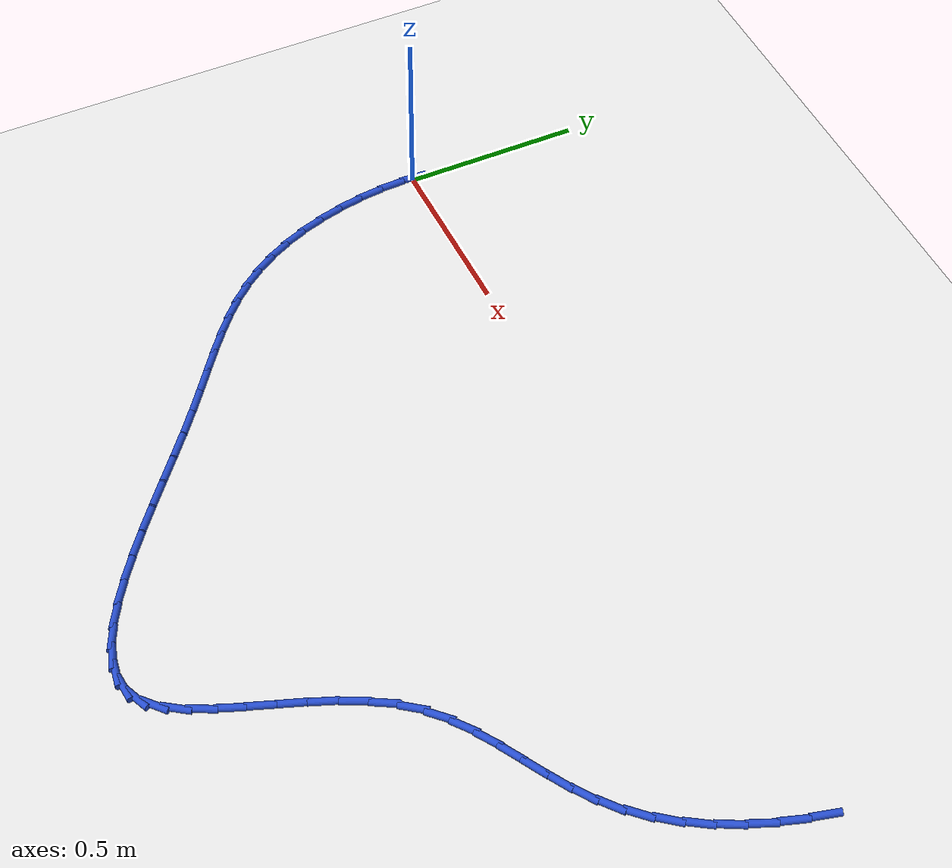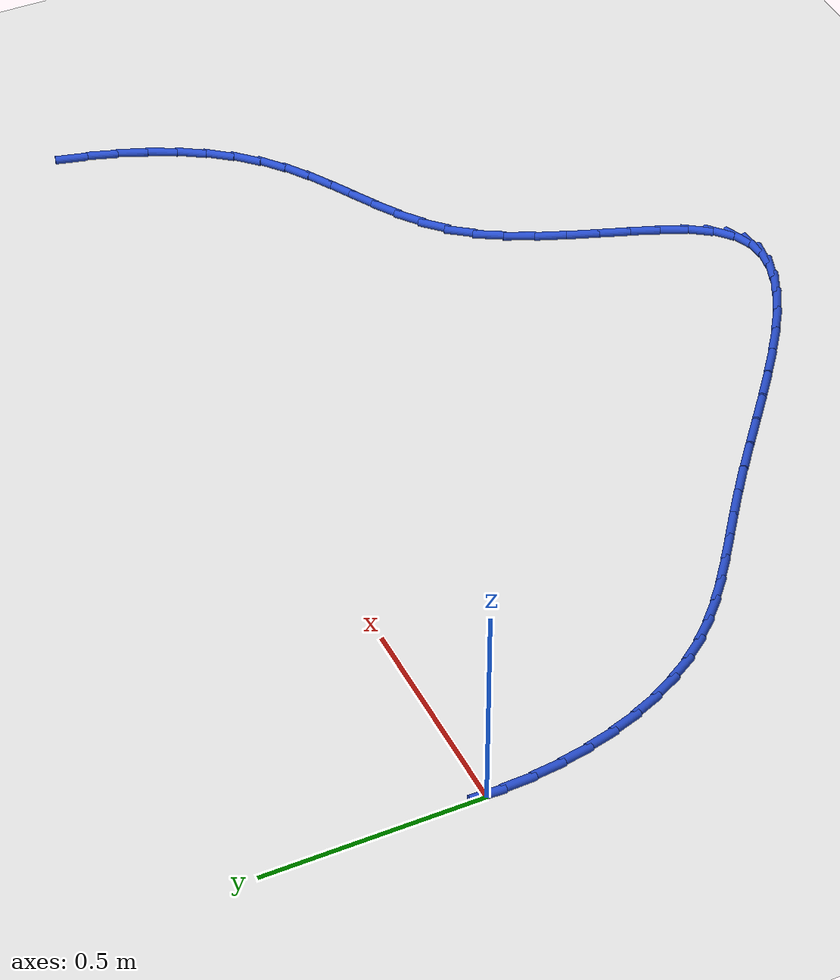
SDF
<sdf version="1.6">
 <world name="default">
  <model name="ground_plane">
   <static>1</static>
   <link name="link">
    <collision name="collision">
     <geometry><plane><normal>0 0 1</normal><size>100 100</size></plane></geometry>
     <surface><friction><ode><mu>100</mu><mu2>50</mu2></ode></friction></surface>
    </collision>
    <visual name="visual">
     <cast_shadows>0</cast_shadows>
     <geometry><plane><normal>0 0 1</normal><size>100 100</size></plane></geometry>
     <material>
      <script><uri>file://media/materials/scripts/gazebo.material</uri><name>Gazebo/WhiteGlow</name></script>
     </material>
    </visual>
   </link>
  </model>
  <model name="line">
   <link name="link_0">
    <pose>-9.367506770274758e-17 -2.7755575615628914e-17 0.01 0 1.57 1.5285880484415388</pose>
    <collision name="collision">
     <geometry><cylinder><radius>0.01</radius><length>0.08</length></cylinder></geometry>
    </collision>
    <visual name="visual">
     <material>
      <script><name>Gazebo/Blue</name><uri>file://media/materials/scripts/gazebo.material</uri></script>
     </material>
     <geometry><cylinder><radius>0.01</radius><length>0.08</length></cylinder></geometry>
    </visual>
   </link>
   <link name="link_55">
    <pose>2.358437446210766 -0.014191606656283134 0.01 0 1.57 1.32390162650616</pose>
    <collision name="collision">
     <geometry><cylinder><radius>0.01</radius><length>0.08</length></cylinder></geometry>
    </collision>
    <visual name="visual">
     <material>
      <script><name>Gazebo/Blue</name><uri>file://media/materials/scripts/gazebo.material</uri></script>
     </material>
     <geometry><cylinder><radius>0.01</radius><length>0.08</length></cylinder></geometry>
    </visual>
   </link>
   <link name="link_56">
    <pose>2.3399127585099904 -0.08769154825853483 0.01 0 1.57 1.2502908710156946</pose>
    <collision name="collision">
     <geometry><cylinder><radius>0.01</radius><length>0.08</length></cylinder></geometry>
    </collision>
    <visual name="visual">
     <material>
      <script><name>Gazebo/Blue</name><uri>file://media/materials/scripts/gazebo.material</uri></script>
     </material>
     <geometry><cylinder><radius>0.01</radius><length>0.08</length></cylinder></geometry>
    </visual>
   </link>
   <link name="link_57">
    <pose>2.3162986900490408 -0.15882887459790287 0.01 0 1.57 1.1723383392986488</pose>
    <collision name="collision">
     <geometry><cylinder><radius>0.01</radius><length>0.08</length></cylinder></geometry>
    </collision>
    <visual name="visual">
     <material>
      <script><name>Gazebo/Blue</name><uri>file://media/materials/scripts/gazebo.material</uri></script>
     </material>
     <geometry><cylinder><radius>0.01</radius><length>0.08</length></cylinder></geometry>
    </visual>
   </link>
   <link name="link_58">
    <pose>2.287644174581855 -0.22689561606193065 0.01 0 1.57 1.088633844616106</pose>
    <collision name="collision">
     <geometry><cylinder><radius>0.01</radius><length>0.08</length></cylinder></geometry>
    </collision>
    <visual name="visual">
     <material>
      <script><name>Gazebo/Blue</name><uri>file://media/materials/scripts/gazebo.material</uri></script>
     </material>
     <geometry><cylinder><radius>0.01</radius><length>0.08</length></cylinder></geometry>
    </visual>
   </link>
   <link name="link_59">
    <pose>2.253998145862369 -0.29118380303816455 0.01 0 1.57 0.997748832861094</pose>
    <collision name="collision">
     <geometry><cylinder><radius>0.01</radius><length>0.08</length></cylinder></geometry>
    </collision>
    <visual name="visual">
     <material>
      <script><name>Gazebo/Blue</name><uri>file://media/materials/scripts/gazebo.material</uri></script>
     </material>
     <geometry><cylinder><radius>0.01</radius><length>0.08</length></cylinder></geometry>
    </visual>
   </link>
   <link name="link_60">
    <pose>2.2154095376445215 -0.35098546591414836 0.01 0 1.57 0.8983316375205985</pose>
    <collision name="collision">
     <geometry><cylinder><radius>0.01</radius><length>0.08</length></cylinder></geometry>
    </collision>
    <visual name="visual">
     <material>
      <script><name>Gazebo/Blue</name><uri>file://media/materials/scripts/gazebo.material</uri></script>
     </material>
     <geometry><cylinder><radius>0.01</radius><length>0.08</length></cylinder></geometry>
    </visual>
   </link>
   <link name="link_61">
    <pose>2.171927283682248 -0.4055926350774283 0.01 0 1.57 0.7892910982523933</pose>
    <collision name="collision">
     <geometry><cylinder><radius>0.01</radius><length>0.08</length></cylinder></geometry>
    </collision>
    <visual name="visual">
     <material>
      <script><name>Gazebo/Blue</name><uri>file://media/materials/scripts/gazebo.material</uri></script>
     </material>
     <geometry><cylinder><radius>0.01</radius><length>0.08</length></cylinder></geometry>
    </visual>
   </link>
   <link name="link_62">
    <pose>2.1236003177294873 -0.45429734091554796 0.01 0 1.57 0.673548225584676</pose>
    <collision name="collision">
     <geometry><cylinder><radius>0.01</radius><length>0.08</length></cylinder></geometry>
    </collision>
    <visual name="visual">
     <material>
      <script><name>Gazebo/Blue</name><uri>file://media/materials/scripts/gazebo.material</uri></script>
     </material>
     <geometry><cylinder><radius>0.01</radius><length>0.08</length></cylinder></geometry>
    </visual>
   </link>
   <link name="link_63">
    <pose>2.0705877566310633 -0.496603793093915 0.01 0 1.57 0.5796017800958054</pose>
    <collision name="collision">
     <geometry><cylinder><radius>0.01</radius><length>0.08</length></cylinder></geometry>
    </collision>
    <visual name="visual">
     <material>
      <script><name>Gazebo/Blue</name><uri>file://media/materials/scripts/gazebo.material</uri></script>
     </material>
     <geometry><cylinder><radius>0.01</radius><length>0.08</length></cylinder></geometry>
    </visual>
   </link>
   <link name="link_64">
    <pose>2.0139217234049434 -0.5336973468864992 0.01 0 1.57 0.5220228827580072</pose>
    <collision name="collision">
     <geometry><cylinder><radius>0.01</radius><length>0.08</length></cylinder></geometry>
    </collision>
    <visual name="visual">
     <material>
      <script><name>Gazebo/Blue</name><uri>file://media/materials/scripts/gazebo.material</uri></script>
     </material>
     <geometry><cylinder><radius>0.01</radius><length>0.08</length></cylinder></geometry>
    </visual>
   </link>
   <link name="link_65">
    <pose>1.9550498292825882 -0.5675634620877389 0.01 0 1.57 0.5007012622687111</pose>
    <collision name="collision">
     <geometry><cylinder><radius>0.01</radius><length>0.08</length></cylinder></geometry>
    </collision>
    <visual name="visual">
     <material>
      <script><name>Gazebo/Blue</name><uri>file://media/materials/scripts/gazebo.material</uri></script>
     </material>
     <geometry><cylinder><radius>0.01</radius><length>0.08</length></cylinder></geometry>
    </visual>
   </link>
   <link name="link_66">
    <pose>1.8954222236985903 -0.6001924863029326 0.01 0 1.57 0.5153796966476312</pose>
    <collision name="collision">
     <geometry><cylinder><radius>0.01</radius><length>0.08</length></cylinder></geometry>
    </collision>
    <visual name="visual">
     <material>
      <script><name>Gazebo/Blue</name><uri>file://media/materials/scripts/gazebo.material</uri></script>
     </material>
     <geometry><cylinder><radius>0.01</radius><length>0.08</length></cylinder></geometry>
    </visual>
   </link>
   <link name="link_67">
    <pose>1.8364890560875462 -0.6335747671373783 0.01 0 1.57 0.5665750098836797</pose>
    <collision name="collision">
     <geometry><cylinder><radius>0.01</radius><length>0.08</length></cylinder></geometry>
    </collision>
    <visual name="visual">
     <material>
      <script><name>Gazebo/Blue</name><uri>file://media/materials/scripts/gazebo.material</uri></script>
     </material>
     <geometry><cylinder><radius>0.01</radius><length>0.08</length></cylinder></geometry>
    </visual>
   </link>
   <link name="link_68">
    <pose>1.7797004758840493 -0.6697006521963745 0.01 0 1.57 0.6550042879419673</pose>
    <collision name="collision">
     <geometry><cylinder><radius>0.01</radius><length>0.08</length></cylinder></geometry>
    </collision>
    <visual name="visual">
     <material>
      <script><name>Gazebo/Blue</name><uri>file://media/materials/scripts/gazebo.material</uri></script>
     </material>
     <geometry><cylinder><radius>0.01</radius><length>0.08</length></cylinder></geometry>
    </visual>
   </link>
   <link name="link_69">
    <pose>1.726506632522697 -0.7105604890852192 0.01 0 1.57 0.7794982787603721</pose>
    <collision name="collision">
     <geometry><cylinder><radius>0.01</radius><length>0.08</length></cylinder></geometry>
    </collision>
    <visual name="visual">
     <material>
      <script><name>Gazebo/Blue</name><uri>file://media/materials/scripts/gazebo.material</uri></script>
     </material>
     <geometry><cylinder><radius>0.01</radius><length>0.08</length></cylinder></geometry>
    </visual>
   </link>
   <link name="link_70">
    <pose>1.6783576754380811 -0.7581446254092113 0.01 0 1.57 0.93036537792649</pose>
    <collision name="collision">
     <geometry><cylinder><radius>0.01</radius><length>0.08</length></cylinder></geometry>
    </collision>
    <visual name="visual">
     <material>
      <script><name>Gazebo/Blue</name><uri>file://media/materials/scripts/gazebo.material</uri></script>
     </material>
     <geometry><cylinder><radius>0.01</radius><length>0.08</length></cylinder></geometry>
    </visual>
   </link>
   <link name="link_71">
    <pose>1.6365682365390335 -0.8142217329104393 0.01 0 1.57 1.0598239026738672</pose>
    <collision name="collision">
     <geometry><cylinder><radius>0.01</radius><length>0.08</length></cylinder></geometry>
    </collision>
    <visual name="visual">
     <material>
      <script><name>Gazebo/Blue</name><uri>file://media/materials/scripts/gazebo.material</uri></script>
     </material>
     <geometry><cylinder><radius>0.01</radius><length>0.08</length></cylinder></geometry>
    </visual>
   </link>
   <link name="link_72">
    <pose>1.6008481009221942 -0.8779353187967383 0.01 0 1.57 1.1474461197450034</pose>
    <collision name="collision">
     <geometry><cylinder><radius>0.01</radius><length>0.08</length></cylinder></geometry>
    </collision>
    <visual name="visual">
     <material>
      <script><name>Gazebo/Blue</name><uri>file://media/materials/scripts/gazebo.material</uri></script>
     </material>
     <geometry><cylinder><radius>0.01</radius><length>0.08</length></cylinder></geometry>
    </visual>
   </link>
   <link name="link_73">
    <pose>1.5698575081754536 -0.9467120724303129 0.01 0 1.57 1.2009334118441248</pose>
    <collision name="collision">
     <geometry><cylinder><radius>0.01</radius><length>0.08</length></cylinder></geometry>
    </collision>
    <visual name="visual">
     <material>
      <script><name>Gazebo/Blue</name><uri>file://media/materials/scripts/gazebo.material</uri></script>
     </material>
     <geometry><cylinder><radius>0.01</radius><length>0.08</length></cylinder></geometry>
    </visual>
   </link>
   <link name="link_74">
    <pose>1.542238558120381 -1.0179490106396194 0.01 0 1.57 1.225099829801175</pose>
    <collision name="collision">
     <geometry><cylinder><radius>0.01</radius><length>0.08</length></cylinder></geometry>
    </collision>
    <visual name="visual">
     <material>
      <script><name>Gazebo/Blue</name><uri>file://media/materials/scripts/gazebo.material</uri></script>
     </material>
     <geometry><cylinder><radius>0.01</radius><length>0.08</length></cylinder></geometry>
    </visual>
   </link>
   <link name="link_75">
    <pose>1.5166333505785485 -1.0890431502531115 0.01 0 1.57 1.2207928794216651</pose>
    <collision name="collision">
     <geometry><cylinder><radius>0.01</radius><length>0.08</length></cylinder></geometry>
    </collision>
    <visual name="visual">
     <material>
      <script><name>Gazebo/Blue</name><uri>file://media/materials/scripts/gazebo.material</uri></script>
     </material>
     <geometry><cylinder><radius>0.01</radius><length>0.08</length></cylinder></geometry>
    </visual>
   </link>
   <link name="link_76">
    <pose>1.4916839853715254 -1.1573915080992458 0.01 0 1.57 1.1841258878624872</pose>
    <collision name="collision">
     <geometry><cylinder><radius>0.01</radius><length>0.08</length></cylinder></geometry>
    </collision>
    <visual name="visual">
     <material>
      <script><name>Gazebo/Blue</name><uri>file://media/materials/scripts/gazebo.material</uri></script>
     </material>
     <geometry><cylinder><radius>0.01</radius><length>0.08</length></cylinder></geometry>
    </visual>
   </link>
   <link name="link_77">
    <pose>1.4660325623208839 -1.2203911010064767 0.01 0 1.57 1.1044281286270115</pose>
    <collision name="collision">
     <geometry><cylinder><radius>0.01</radius><length>0.08</length></cylinder></geometry>
    </collision>
    <visual name="visual">
     <material>
      <script><name>Gazebo/Blue</name><uri>file://media/materials/scripts/gazebo.material</uri></script>
     </material>
     <geometry><cylinder><radius>0.01</radius><length>0.08</length></cylinder></geometry>
    </visual>
   </link>
   <link name="link_78">
    <pose>1.4383211812481929 -1.27543894580326 0.01 0 1.57 0.9603108471024233</pose>
    <collision name="collision">
     <geometry><cylinder><radius>0.01</radius><length>0.08</length></cylinder></geometry>
    </collision>
    <visual name="visual">
     <material>
      <script><name>Gazebo/Blue</name><uri>file://media/materials/scripts/gazebo.material</uri></script>
     </material>
     <geometry><cylinder><radius>0.01</radius><length>0.08</length></cylinder></geometry>
    </visual>
   </link>
   <link name="link_79">
    <pose>1.4071919419750243 -1.3199320593180495 0.01 0 1.57 0.7176602700678565</pose>
    <collision name="collision">
     <geometry><cylinder><radius>0.01</radius><length>0.08</length></cylinder></geometry>
    </collision>
    <visual name="visual">
     <material>
      <script><name>Gazebo/Blue</name><uri>file://media/materials/scripts/gazebo.material</uri></script>
     </material>
     <geometry><cylinder><radius>0.01</radius><length>0.08</length></cylinder></geometry>
    </visual>
   </link>
   <link name="link_80">
    <pose>1.3712894625672358 -1.351272655056429 0.01 0 1.57 0.3832506354725179</pose>
    <collision name="collision">
     <geometry><cylinder><radius>0.01</radius><length>0.08</length></cylinder></geometry>
    </collision>
    <visual name="visual">
     <material>
      <script><name>Gazebo/Blue</name><uri>file://media/materials/scripts/gazebo.material</uri></script>
     </material>
     <geometry><cylinder><radius>0.01</radius><length>0.08</length></cylinder></geometry>
    </visual>
   </link>
   <link name="link_81">
    <pose>1.329808100363766 -1.3679973946472626 0.01 0 1.57 0.06836478159391231</pose>
    <collision name="collision">
     <geometry><cylinder><radius>0.01</radius><length>0.08</length></cylinder></geometry>
    </collision>
    <visual name="visual">
     <material>
      <script><name>Gazebo/Blue</name><uri>file://media/materials/scripts/gazebo.material</uri></script>
     </material>
     <geometry><cylinder><radius>0.01</radius><length>0.08</length></cylinder></geometry>
    </visual>
   </link>
   <link name="link_82">
    <pose>1.2831766411194183 -1.3711903200291096 0.01 0 1.57 -0.17230417804516793</pose>
    <collision name="collision">
     <geometry><cylinder><radius>0.01</radius><length>0.08</length></cylinder></geometry>
    </collision>
    <visual name="visual">
     <material>
      <script><name>Gazebo/Blue</name><uri>file://media/materials/scripts/gazebo.material</uri></script>
     </material>
     <geometry><cylinder><radius>0.01</radius><length>0.08</length></cylinder></geometry>
    </visual>
   </link>
   <link name="link_83">
    <pose>1.2319921261373064 -1.3622826871751825 0.01 0 1.57 -0.34115517033420995</pose>
    <collision name="collision">
     <geometry><cylinder><radius>0.01</radius><length>0.08</length></cylinder></geometry>
    </collision>
    <visual name="visual">
     <material>
      <script><name>Gazebo/Blue</name><uri>file://media/materials/scripts/gazebo.material</uri></script>
     </material>
     <geometry><cylinder><radius>0.01</radius><length>0.08</length></cylinder></geometry>
    </visual>
   </link>
   <link name="link_84">
    <pose>1.1768515967205462 -1.3427057520586931 0.01 0 1.57 -0.4576843303723018</pose>
    <collision name="collision">
     <geometry><cylinder><radius>0.01</radius><length>0.08</length></cylinder></geometry>
    </collision>
    <visual name="visual">
     <material>
      <script><name>Gazebo/Blue</name><uri>file://media/materials/scripts/gazebo.material</uri></script>
     </material>
     <geometry><cylinder><radius>0.01</radius><length>0.08</length></cylinder></geometry>
    </visual>
   </link>
   <link name="link_85">
    <pose>1.118352094172252 -1.3138907706528542 0.01 0 1.57 -0.5387965099283276</pose>
    <collision name="collision">
     <geometry><cylinder><radius>0.01</radius><length>0.08</length></cylinder></geometry>
    </collision>
    <visual name="visual">
     <material>
      <script><name>Gazebo/Blue</name><uri>file://media/materials/scripts/gazebo.material</uri></script>
     </material>
     <geometry><cylinder><radius>0.01</radius><length>0.08</length></cylinder></geometry>
    </visual>
   </link>
   <link name="link_86">
    <pose>1.0570906597955385 -1.2772689989308774 0.01 0 1.57 -0.5957457456294063</pose>
    <collision name="collision">
     <geometry><cylinder><radius>0.01</radius><length>0.08</length></cylinder></geometry>
    </collision>
    <visual name="visual">
     <material>
      <script><name>Gazebo/Blue</name><uri>file://media/materials/scripts/gazebo.material</uri></script>
     </material>
     <geometry><cylinder><radius>0.01</radius><length>0.08</length></cylinder></geometry>
    </visual>
   </link>
   <link name="link_87">
    <pose>0.9936643348935204 -1.2342716928659754 0.01 0 1.57 -0.6355365097820314</pose>
    <collision name="collision">
     <geometry><cylinder><radius>0.01</radius><length>0.08</length></cylinder></geometry>
    </collision>
    <visual name="visual">
     <material>
      <script><name>Gazebo/Blue</name><uri>file://media/materials/scripts/gazebo.material</uri></script>
     </material>
     <geometry><cylinder><radius>0.01</radius><length>0.08</length></cylinder></geometry>
    </visual>
   </link>
   <link name="link_88">
    <pose>0.928670160769313 -1.1863301084313604 0.01 0 1.57 -0.6624443979334573</pose>
    <collision name="collision">
     <geometry><cylinder><radius>0.01</radius><length>0.08</length></cylinder></geometry>
    </collision>
    <visual name="visual">
     <material>
      <script><name>Gazebo/Blue</name><uri>file://media/materials/scripts/gazebo.material</uri></script>
     </material>
     <geometry><cylinder><radius>0.01</radius><length>0.08</length></cylinder></geometry>
    </visual>
   </link>
   <link name="link_89">
    <pose>0.8627051787260297 -1.1348755016002443 0.01 0 1.57 -0.6790038412336524</pose>
    <collision name="collision">
     <geometry><cylinder><radius>0.01</radius><length>0.08</length></cylinder></geometry>
    </collision>
    <visual name="visual">
     <material>
      <script><name>Gazebo/Blue</name><uri>file://media/materials/scripts/gazebo.material</uri></script>
     </material>
     <geometry><cylinder><radius>0.01</radius><length>0.08</length></cylinder></geometry>
    </visual>
   </link>
   <link name="link_90">
    <pose>0.7963664300667871 -1.0813391283458405 0.01 0 1.57 -0.6865661321255546</pose>
    <collision name="collision">
     <geometry><cylinder><radius>0.01</radius><length>0.08</length></cylinder></geometry>
    </collision>
    <visual name="visual">
     <material>
      <script><name>Gazebo/Blue</name><uri>file://media/materials/scripts/gazebo.material</uri></script>
     </material>
     <geometry><cylinder><radius>0.01</radius><length>0.08</length></cylinder></geometry>
    </visual>
   </link>
   <link name="link_91">
    <pose>0.730250956094698 -1.0271522446413597 0.01 0 1.57 -0.6855719485342617</pose>
    <collision name="collision">
     <geometry><cylinder><radius>0.01</radius><length>0.08</length></cylinder></geometry>
    </collision>
    <visual name="visual">
     <material>
      <script><name>Gazebo/Blue</name><uri>file://media/materials/scripts/gazebo.material</uri></script>
     </material>
     <geometry><cylinder><radius>0.01</radius><length>0.08</length></cylinder></geometry>
    </visual>
   </link>
   <link name="link_92">
    <pose>0.6649557981128789 -0.9737461064600151 0.01 0 1.57 -0.6756175365617095</pose>
    <collision name="collision">
     <geometry><cylinder><radius>0.01</radius><length>0.08</length></cylinder></geometry>
    </collision>
    <visual name="visual">
     <material>
      <script><name>Gazebo/Blue</name><uri>file://media/materials/scripts/gazebo.material</uri></script>
     </material>
     <geometry><cylinder><radius>0.01</radius><length>0.08</length></cylinder></geometry>
    </visual>
   </link>
   <link name="link_93">
    <pose>0.6010779974244429 -0.9225519697750189 0.01 0 1.57 -0.6568071686175487</pose>
    <collision name="collision">
     <geometry><cylinder><radius>0.01</radius><length>0.08</length></cylinder></geometry>
    </collision>
    <visual name="visual">
     <material>
      <script><name>Gazebo/Blue</name><uri>file://media/materials/scripts/gazebo.material</uri></script>
     </material>
     <geometry><cylinder><radius>0.01</radius><length>0.08</length></cylinder></geometry>
    </visual>
   </link>
   <link name="link_94">
    <pose>0.5391887580978142 -0.8748352707103054 0.01 0 1.57 -0.641438939162202</pose>
    <collision name="collision">
     <geometry><cylinder><radius>0.01</radius><length>0.08</length></cylinder></geometry>
    </collision>
    <visual name="visual">
     <material>
      <script><name>Gazebo/Blue</name><uri>file://media/materials/scripts/gazebo.material</uri></script>
     </material>
     <geometry><cylinder><radius>0.01</radius><length>0.08</length></cylinder></geometry>
    </visual>
   </link>
   <link name="link_95">
    <pose>0.4796243365415622 -0.8303535833445981 0.01 0 1.57 -0.6381176025375882</pose>
    <collision name="collision">
     <geometry><cylinder><radius>0.01</radius><length>0.08</length></cylinder></geometry>
    </collision>
    <visual name="visual">
     <material>
      <script><name>Gazebo/Blue</name><uri>file://media/materials/scripts/gazebo.material</uri></script>
     </material>
     <geometry><cylinder><radius>0.01</radius><length>0.08</length></cylinder></geometry>
    </visual>
   </link>
   <link name="link_96">
    <pose>0.4225956115366153 -0.7880598252379734 0.01 0 1.57 -0.6487616593344322</pose>
    <collision name="collision">
     <geometry><cylinder><radius>0.01</radius><length>0.08</length></cylinder></geometry>
    </collision>
    <visual name="visual">
     <material>
      <script><name>Gazebo/Blue</name><uri>file://media/materials/scripts/gazebo.material</uri></script>
     </material>
     <geometry><cylinder><radius>0.01</radius><length>0.08</length></cylinder></geometry>
    </visual>
   </link>
   <link name="link_97">
    <pose>0.3683122867730615 -0.74689937237773 0.01 0 1.57 -0.6749689281022722</pose>
    <collision name="collision">
     <geometry><cylinder><radius>0.01</radius><length>0.08</length></cylinder></geometry>
    </collision>
    <visual name="visual">
     <material>
      <script><name>Gazebo/Blue</name><uri>file://media/materials/scripts/gazebo.material</uri></script>
     </material>
     <geometry><cylinder><radius>0.01</radius><length>0.08</length></cylinder></geometry>
    </visual>
   </link>
   <link name="link_98">
    <pose>0.31698406594098855 -0.7058176007511666 0.01 0 1.57 -0.7178263720620128</pose>
    <collision name="collision">
     <geometry><cylinder><radius>0.01</radius><length>0.08</length></cylinder></geometry>
    </collision>
    <visual name="visual">
     <material>
      <script><name>Gazebo/Blue</name><uri>file://media/materials/scripts/gazebo.material</uri></script>
     </material>
     <geometry><cylinder><radius>0.01</radius><length>0.08</length></cylinder></geometry>
    </visual>
   </link>
   <link name="link_99">
    <pose>0.26882065273048655 -0.6637598863455838 0.01 0 1.57 -0.777515305671626</pose>
    <collision name="collision">
     <geometry><cylinder><radius>0.01</radius><length>0.08</length></cylinder></geometry>
    </collision>
    <visual name="visual">
     <material>
      <script><name>Gazebo/Blue</name><uri>file://media/materials/scripts/gazebo.material</uri></script>
     </material>
     <geometry><cylinder><radius>0.01</radius><length>0.08</length></cylinder></geometry>
    </visual>
   </link>
   <link name="link_100">
    <pose>0.2240317508316429 -0.6196716051482798 0.01 0 1.57 -0.852832639667383</pose>
    <collision name="collision">
     <geometry><cylinder><radius>0.01</radius><length>0.08</length></cylinder></geometry>
    </collision>
    <visual name="visual">
     <material>
      <script><name>Gazebo/Blue</name><uri>file://media/materials/scripts/gazebo.material</uri></script>
     </material>
     <geometry><cylinder><radius>0.01</radius><length>0.08</length></cylinder></geometry>
    </visual>
   </link>
   <link name="link_101">
    <pose>0.1828270639345471 -0.572498133146555 0.01 0 1.57 -0.940689025097544</pose>
    <collision name="collision">
     <geometry><cylinder><radius>0.01</radius><length>0.08</length></cylinder></geometry>
    </collision>
    <visual name="visual">
     <material>
      <script><name>Gazebo/Blue</name><uri>file://media/materials/scripts/gazebo.material</uri></script>
     </material>
     <geometry><cylinder><radius>0.01</radius><length>0.08</length></cylinder></geometry>
    </visual>
   </link>
   <link name="link_102">
    <pose>0.14541562342448078 -0.5211989238116806 0.01 0 1.57 -1.0308973298515662</pose>
    <collision name="collision">
     <geometry><cylinder><radius>0.01</radius><length>0.08</length></cylinder></geometry>
    </collision>
    <visual name="visual">
     <material>
      <script><name>Gazebo/Blue</name><uri>file://media/materials/scripts/gazebo.material</uri></script>
     </material>
     <geometry><cylinder><radius>0.01</radius><length>0.08</length></cylinder></geometry>
    </visual>
   </link>
   <link name="link_103">
    <pose>0.1119747103567288 -0.46539825519683736 0.01 0 1.57 -1.1142945403631228</pose>
    <collision name="collision">
     <geometry><cylinder><radius>0.01</radius><length>0.08</length></cylinder></geometry>
    </collision>
    <visual name="visual">
     <material>
      <script><name>Gazebo/Blue</name><uri>file://media/materials/scripts/gazebo.material</uri></script>
     </material>
     <geometry><cylinder><radius>0.01</radius><length>0.08</length></cylinder></geometry>
    </visual>
   </link>
   <link name="link_104">
    <pose>0.08263678255988843 -0.4056589651416064 0.01 0 1.57 -1.1918197882010189</pose>
    <collision name="collision">
     <geometry><cylinder><radius>0.01</radius><length>0.08</length></cylinder></geometry>
    </collision>
    <visual name="visual">
     <material>
      <script><name>Gazebo/Blue</name><uri>file://media/materials/scripts/gazebo.material</uri></script>
     </material>
     <geometry><cylinder><radius>0.01</radius><length>0.08</length></cylinder></geometry>
    </visual>
   </link>
   <link name="link_105">
    <pose>0.05753091313274609 -0.3426147648145231 0.01 0 1.57 -1.265021147334996</pose>
    <collision name="collision">
     <geometry><cylinder><radius>0.01</radius><length>0.08</length></cylinder></geometry>
    </collision>
    <visual name="visual">
     <material>
      <script><name>Gazebo/Blue</name><uri>file://media/materials/scripts/gazebo.material</uri></script>
     </material>
     <geometry><cylinder><radius>0.01</radius><length>0.08</length></cylinder></geometry>
    </visual>
   </link>
   <link name="link_106">
    <pose>0.036786175174086916 -0.27689936538412024 0.01 0 1.57 -1.335337308872432</pose>
    <collision name="collision">
     <geometry><cylinder><radius>0.01</radius><length>0.08</length></cylinder></geometry>
    </collision>
    <visual name="visual">
     <material>
      <script><name>Gazebo/Blue</name><uri>file://media/materials/scripts/gazebo.material</uri></script>
     </material>
     <geometry><cylinder><radius>0.01</radius><length>0.08</length></cylinder></geometry>
    </visual>
   </link>
   <link name="link_107">
    <pose>0.02053164178269714 -0.20914647801893305 0.01 0 1.57 -1.40411246954817</pose>
    <collision name="collision">
     <geometry><cylinder><radius>0.01</radius><length>0.08</length></cylinder></geometry>
    </collision>
    <visual name="visual">
     <material>
      <script><name>Gazebo/Blue</name><uri>file://media/materials/scripts/gazebo.material</uri></script>
     </material>
     <geometry><cylinder><radius>0.01</radius><length>0.08</length></cylinder></geometry>
    </visual>
   </link>
   <link name="link_108">
    <pose>0.008896386057362093 -0.1399898138874941 0.01 0 1.57 -1.4726254765258302</pose>
    <collision name="collision">
     <geometry><cylinder><radius>0.01</radius><length>0.08</length></cylinder></geometry>
    </collision>
    <visual name="visual">
     <material>
      <script><name>Gazebo/Blue</name><uri>file://media/materials/scripts/gazebo.material</uri></script>
     </material>
     <geometry><cylinder><radius>0.01</radius><length>0.08</length></cylinder></geometry>
    </visual>
   </link>
   <link name="link_109">
    <pose>0.00200948109686783 -0.07006308415833888 0.01 0 1.57 -1.5421231618570315</pose>
    <collision name="collision">
     <geometry><cylinder><radius>0.01</radius><length>0.08</length></cylinder></geometry>
    </collision>
    <visual name="visual">
     <material>
      <script><name>Gazebo/Blue</name><uri>file://media/materials/scripts/gazebo.material</uri></script>
     </material>
     <geometry><cylinder><radius>0.01</radius><length>0.08</length></cylinder></geometry>
    </visual>
   </link>
  </model>
 </world>
</sdf>
